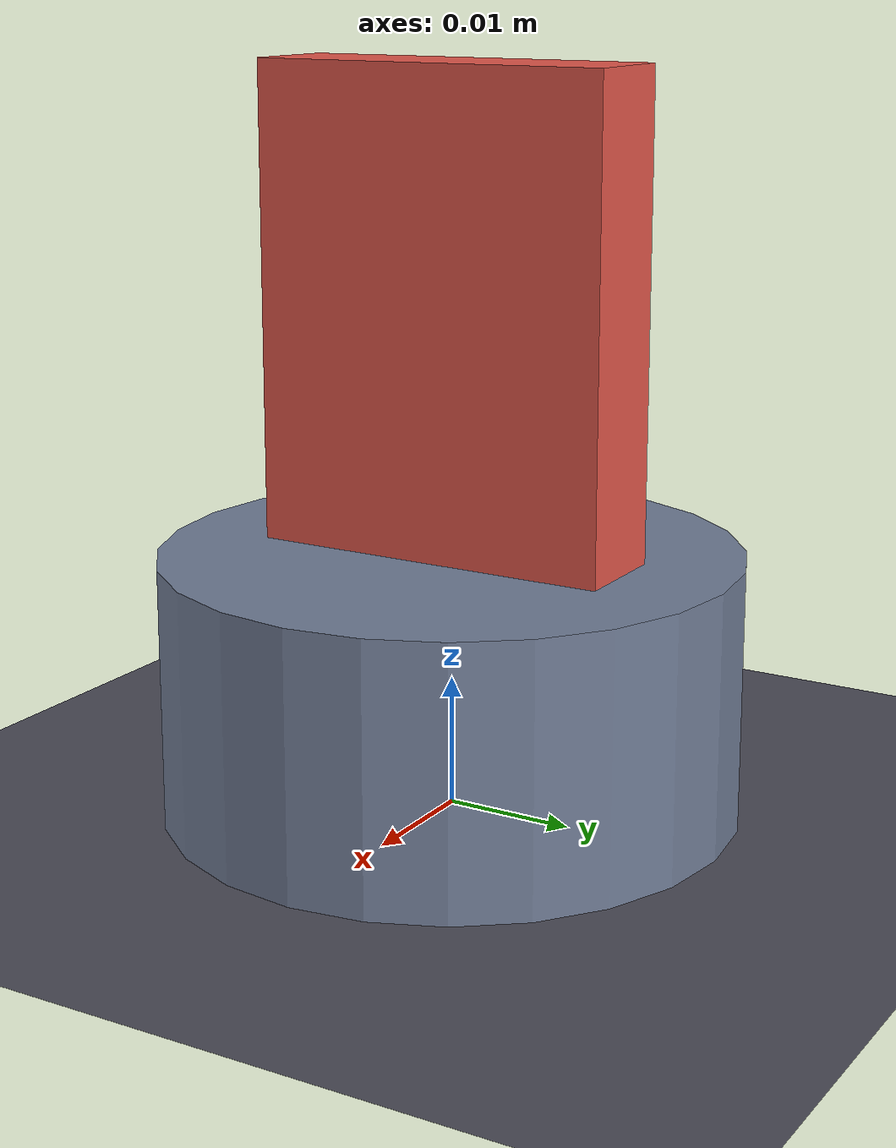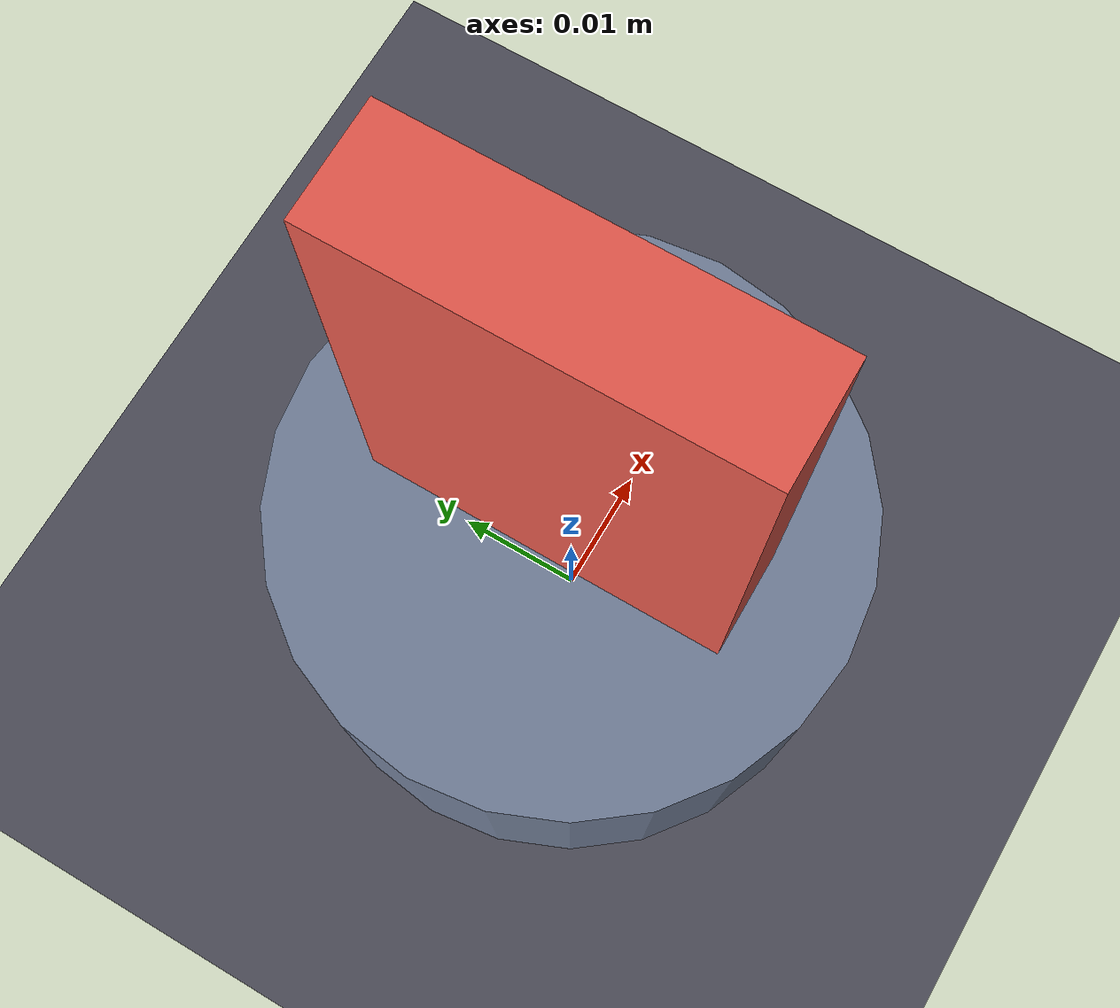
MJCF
<mujoco model="tongs_object">
  <option gravity="0 0 -9.81"/>
  <asset>
    <texture type="skybox" builtin="gradient" rgb1="0.3 0.5 0.7" rgb2="0 0 0" width="256" height="1536"/>
  </asset>
  <worldbody>
    <light pos="0 0 0.4" dir="0 0 -1" directional="true"/>
    <geom name="floor" type="plane" size="0.3 0.3 0.05" rgba="0.30 0.30 0.35 1"/>
    <body name="object" pos="0 0 0">
      <geom name="base" type="cylinder" size="0.022 0.010" pos="0 0 0.010" rgba="0.45 0.50 0.60 1"/>
      <geom name="tab"  type="box"      size="0.004 0.014 0.018" pos="0 0 0.038" rgba="0.90 0.35 0.30 1"/>
    </body>
  </worldbody>
</mujoco>
